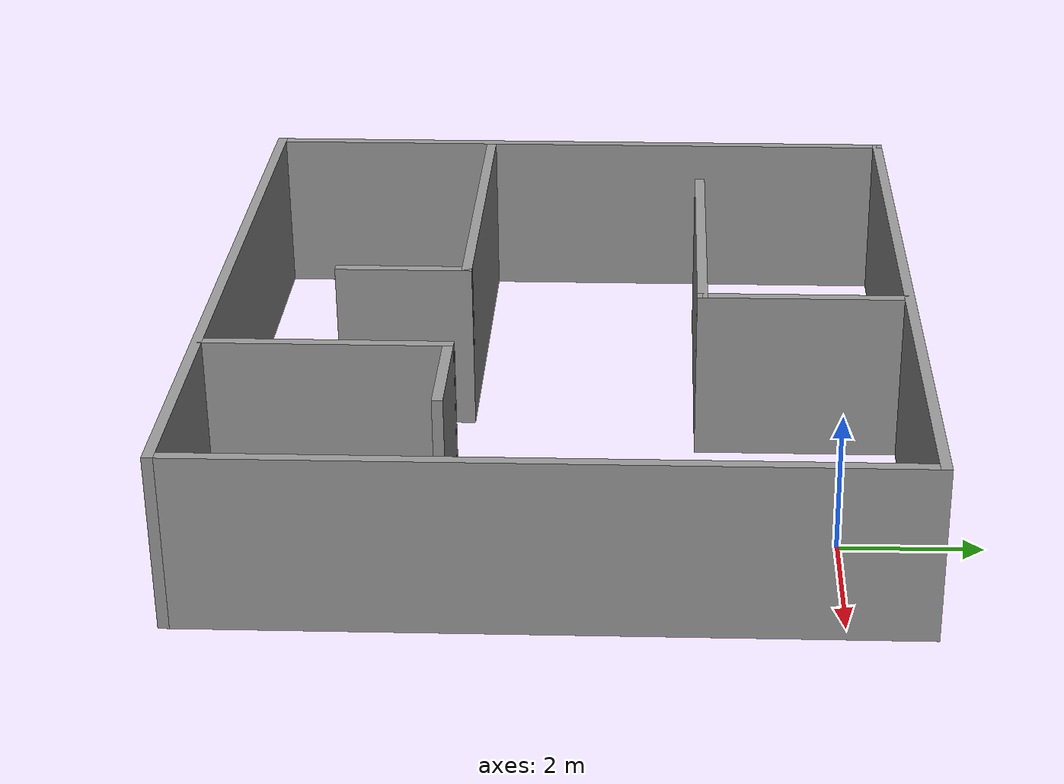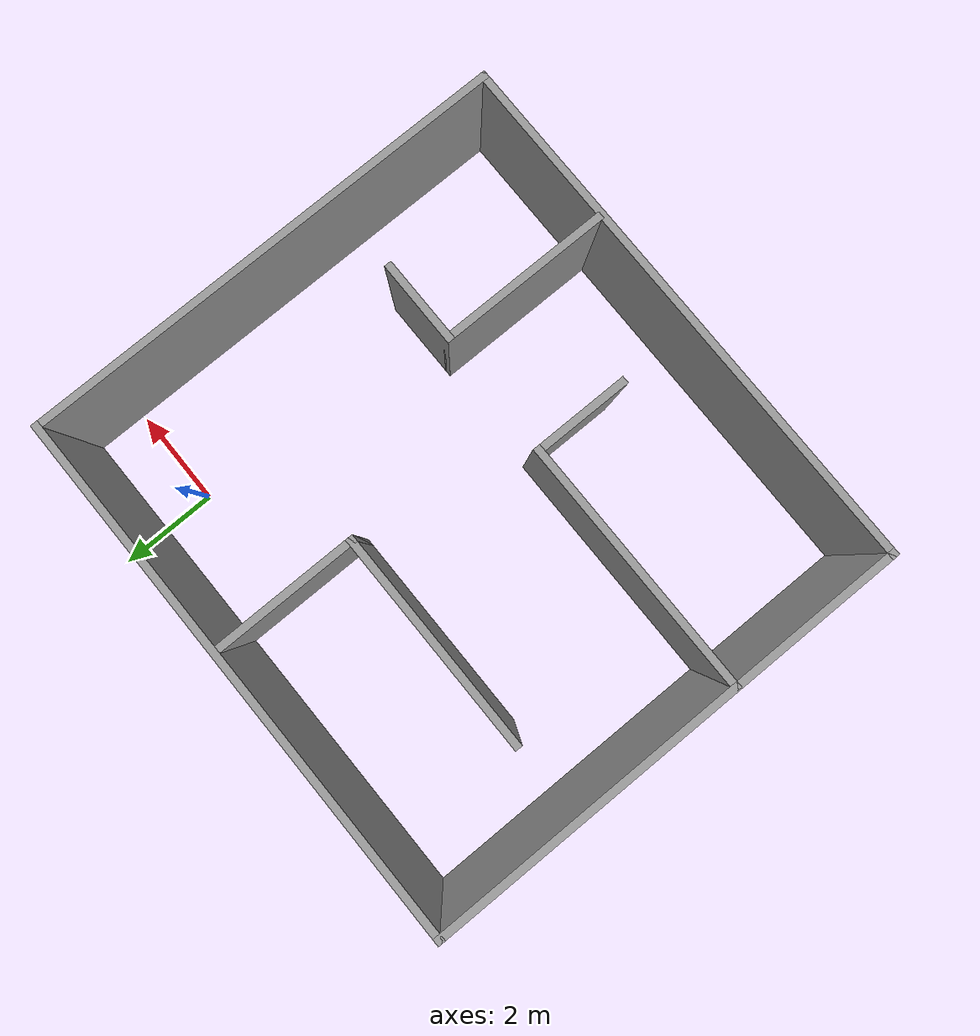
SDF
<?xml version='1.0'?>
<sdf version='1.7'>
  <model name='room'>
    <pose>-3.23882 -3.83239 0 0 -0 0</pose>
    <link name='Wall_0'>
      <collision name='Wall_0_Collision'>
        <geometry>
          <box>
            <size>11 0.15 2.5</size>
          </box>
        </geometry>
        <pose>0 0 1.25 0 -0 0</pose>
      </collision>
      <visual name='Wall_0_Visual'>
        <pose>0 0 1.25 0 -0 0</pose>
        <geometry>
          <box>
            <size>11 0.15 2.5</size>
          </box>
        </geometry>
        <material>
          <script>
            <uri>file://media/materials/scripts/gazebo.material</uri>
            <name>Gazebo/Grey</name>
          </script>
          <ambient>1 1 1 1</ambient>
        </material>
        <meta>
          <layer>0</layer>
        </meta>
      </visual>
      <pose>0 4.925 0 0 -0 0</pose>
    </link>
    <link name='Wall_1'>
      <collision name='Wall_1_Collision'>
        <geometry>
          <box>
            <size>10 0.15 2.5</size>
          </box>
        </geometry>
        <pose>0 0 1.25 0 -0 0</pose>
      </collision>
      <visual name='Wall_1_Visual'>
        <pose>0 0 1.25 0 -0 0</pose>
        <geometry>
          <box>
            <size>10 0.15 2.5</size>
          </box>
        </geometry>
        <material>
          <script>
            <uri>file://media/materials/scripts/gazebo.material</uri>
            <name>Gazebo/Grey</name>
          </script>
          <ambient>1 1 1 1</ambient>
        </material>
        <meta>
          <layer>0</layer>
        </meta>
      </visual>
      <pose>5.425 -0 0 0 -0 -1.5708</pose>
    </link>
    <link name='Wall_11'>
      <collision name='Wall_11_Collision'>
        <geometry>
          <box>
            <size>3.5 0.15 2.5</size>
          </box>
        </geometry>
        <pose>0 0 1.25 0 -0 0</pose>
      </collision>
      <visual name='Wall_11_Visual'>
        <pose>0 0 1.25 0 -0 0</pose>
        <geometry>
          <box>
            <size>3.5 0.15 2.5</size>
          </box>
        </geometry>
        <material>
          <script>
            <uri>file://media/materials/scripts/gazebo.material</uri>
            <name>Gazebo/Grey</name>
          </script>
          <ambient>1 1 1 1</ambient>
        </material>
        <meta>
          <layer>0</layer>
        </meta>
      </visual>
      <pose>2.18053 -3.16112 0 0 -0 1.5708</pose>
    </link>
    <link name='Wall_12'>
      <collision name='Wall_12_Collision'>
        <geometry>
          <box>
            <size>1.75 0.15 2.5</size>
          </box>
        </geometry>
        <pose>0 0 1.25 0 -0 0</pose>
      </collision>
      <visual name='Wall_12_Visual'>
        <pose>0 0 1.25 0 -0 0</pose>
        <geometry>
          <box>
            <size>1.75 0.15 2.5</size>
          </box>
        </geometry>
        <material>
          <script>
            <uri>file://media/materials/scripts/gazebo.material</uri>
            <name>Gazebo/Grey</name>
          </script>
          <ambient>1 1 1 1</ambient>
        </material>
        <meta>
          <layer>0</layer>
        </meta>
      </visual>
      <pose>2.98053 -1.48612 0 0 -0 0</pose>
    </link>
    <link name='Wall_2'>
      <collision name='Wall_2_Collision'>
        <geometry>
          <box>
            <size>11 0.15 2.5</size>
          </box>
        </geometry>
        <pose>0 0 1.25 0 -0 0</pose>
      </collision>
      <visual name='Wall_2_Visual'>
        <pose>0 0 1.25 0 -0 0</pose>
        <geometry>
          <box>
            <size>11 0.15 2.5</size>
          </box>
        </geometry>
        <material>
          <script>
            <uri>file://media/materials/scripts/gazebo.material</uri>
            <name>Gazebo/Grey</name>
          </script>
          <ambient>1 1 1 1</ambient>
        </material>
        <meta>
          <layer>0</layer>
        </meta>
      </visual>
      <pose>0 -4.925 0 0 -0 3.14159</pose>
    </link>
    <link name='Wall_3'>
      <collision name='Wall_3_Collision'>
        <geometry>
          <box>
            <size>10 0.15 2.5</size>
          </box>
        </geometry>
        <pose>0 0 1.25 0 -0 0</pose>
      </collision>
      <visual name='Wall_3_Visual'>
        <pose>0 0 1.25 0 -0 0</pose>
        <geometry>
          <box>
            <size>10 0.15 2.5</size>
          </box>
        </geometry>
        <material>
          <script>
            <uri>file://media/materials/scripts/gazebo.material</uri>
            <name>Gazebo/Grey</name>
          </script>
          <ambient>1 1 1 1</ambient>
        </material>
        <meta>
          <layer>0</layer>
        </meta>
      </visual>
      <pose>-5.425 -0 0 0 -0 1.5708</pose>
    </link>
    <link name='Wall_5'>
      <collision name='Wall_5_Collision'>
        <geometry>
          <box>
            <size>4.5 0.15 2.5</size>
          </box>
        </geometry>
        <pose>0 0 1.25 0 -0 0</pose>
      </collision>
      <visual name='Wall_5_Visual'>
        <pose>0 0 1.25 0 -0 0</pose>
        <geometry>
          <box>
            <size>4.5 0.15 2.5</size>
          </box>
        </geometry>
        <material>
          <script>
            <uri>file://media/materials/scripts/gazebo.material</uri>
            <name>Gazebo/Grey</name>
          </script>
          <ambient>1 1 1 1</ambient>
        </material>
        <meta>
          <layer>0</layer>
        </meta>
      </visual>
      <pose>-1.65843 1.98741 0 0 -0 0</pose>
    </link>
    <link name='Wall_6'>
      <collision name='Wall_6_Collision'>
        <geometry>
          <box>
            <size>3 0.15 2.5</size>
          </box>
        </geometry>
        <pose>0 0 1.25 0 -0 0</pose>
      </collision>
      <visual name='Wall_6_Visual'>
        <pose>0 0 1.25 0 -0 0</pose>
        <geometry>
          <box>
            <size>3 0.15 2.5</size>
          </box>
        </geometry>
        <material>
          <script>
            <uri>file://media/materials/scripts/gazebo.material</uri>
            <name>Gazebo/Grey</name>
          </script>
          <ambient>1 1 1 1</ambient>
        </material>
        <meta>
          <layer>0</layer>
        </meta>
      </visual>
      <pose>0.516575 3.41241 0 0 -0 1.5708</pose>
    </link>
    <link name='Wall_8'>
      <collision name='Wall_8_Collision'>
        <geometry>
          <box>
            <size>5.25 0.15 2.5</size>
          </box>
        </geometry>
        <pose>0 0 1.25 0 -0 0</pose>
      </collision>
      <visual name='Wall_8_Visual'>
        <pose>0 0 1.25 0 -0 0</pose>
        <geometry>
          <box>
            <size>5.25 0.15 2.5</size>
          </box>
        </geometry>
        <material>
          <script>
            <uri>file://media/materials/scripts/gazebo.material</uri>
            <name>Gazebo/Grey</name>
          </script>
          <ambient>1 1 1 1</ambient>
        </material>
        <meta>
          <layer>0</layer>
        </meta>
      </visual>
      <pose>-2.85631 -1.43592 0 0 -0 0</pose>
    </link>
    <link name='Wall_9'>
      <collision name='Wall_9_Collision'>
        <geometry>
          <box>
            <size>2 0.15 2.5</size>
          </box>
        </geometry>
        <pose>0 0 1.25 0 -0 0</pose>
      </collision>
      <visual name='Wall_9_Visual'>
        <pose>0 0 1.25 0 -0 0</pose>
        <geometry>
          <box>
            <size>2 0.15 2.5</size>
          </box>
        </geometry>
        <material>
          <script>
            <uri>file://media/materials/scripts/gazebo.material</uri>
            <name>Gazebo/Grey</name>
          </script>
          <ambient>1 1 1 1</ambient>
        </material>
        <meta>
          <layer>0</layer>
        </meta>
      </visual>
      <pose>-0.306306 -2.36092 0 0 -0 -1.5708</pose>
    </link>
    <static>1</static>
  </model>
</sdf>
